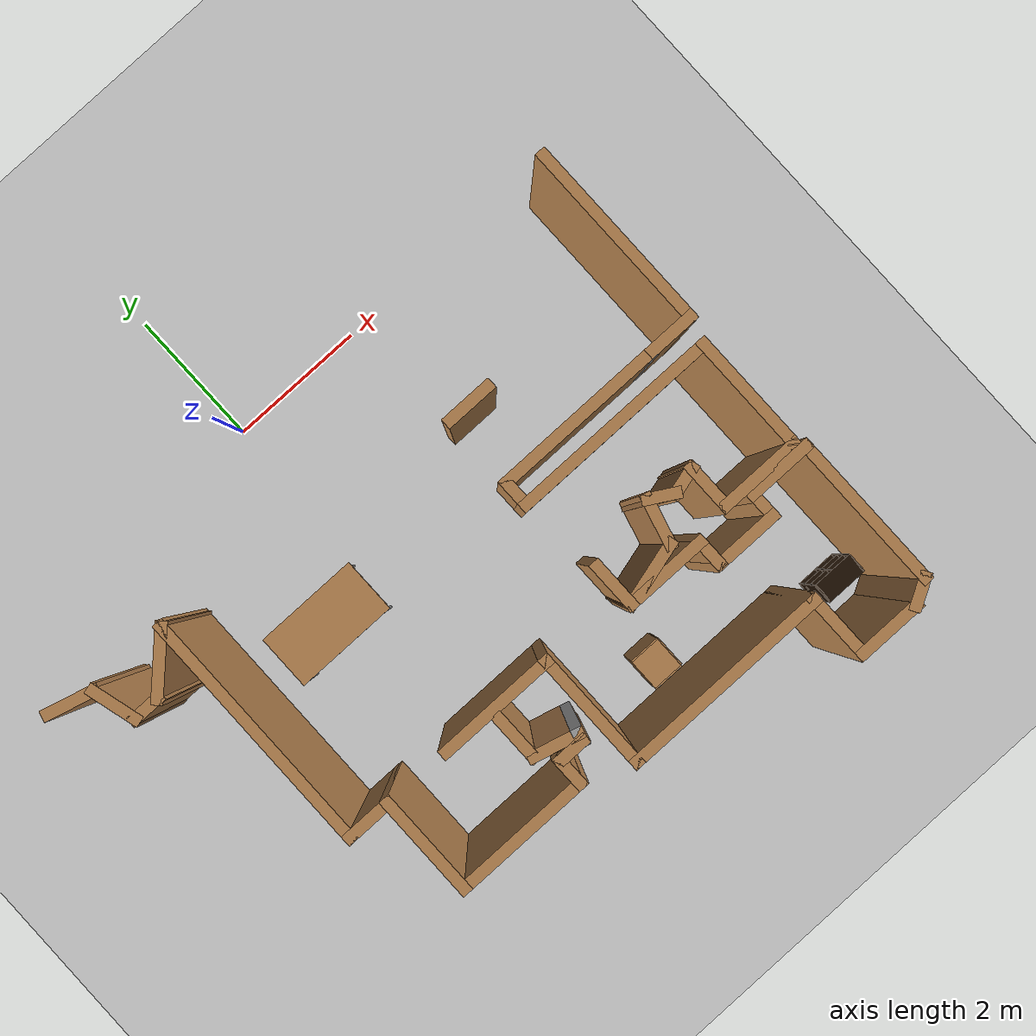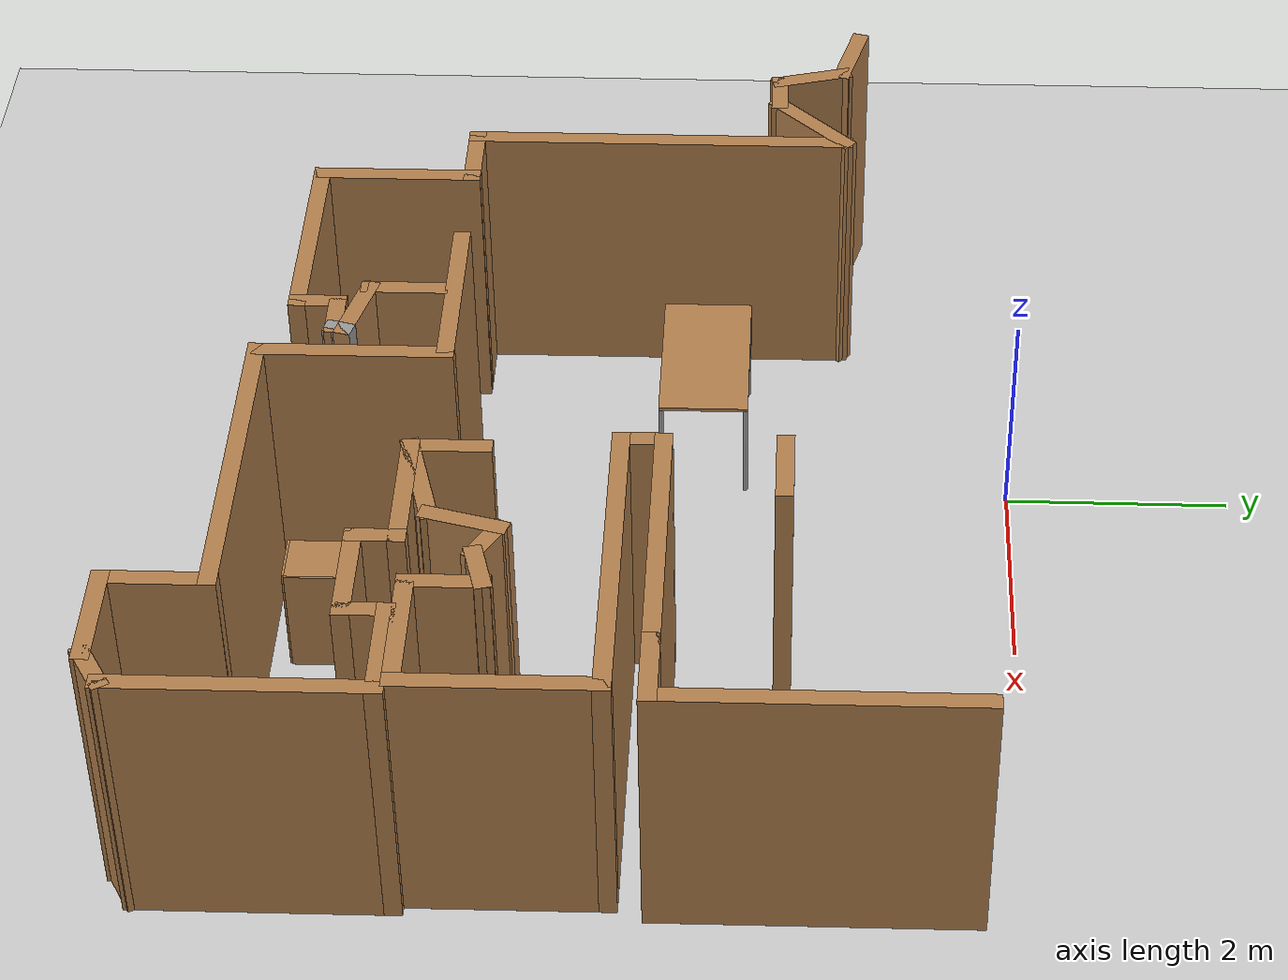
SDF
<sdf version="1.7">
 <world name="default">
  <model name="ground_plane">
   <static>1</static>
   <link name="link">
    <collision name="collision">
     <geometry><plane><normal>0 0 1</normal><size>100 100</size></plane></geometry>
     <surface>
      <contact><collide_bitmask>65535</collide_bitmask></contact>
      <friction><ode><mu>100</mu><mu2>50</mu2></ode></friction>
     </surface>
    </collision>
    <visual name="visual">
     <cast_shadows>0</cast_shadows>
     <geometry><plane><normal>0 0 1</normal><size>100 100</size></plane></geometry>
     <material>
      <script><uri>file://media/materials/scripts/gazebo.material</uri><name>Gazebo/Grey</name></script>
     </material>
    </visual>
   </link>
  </model>
  <model name="map_9">
   <pose>0.660855 -0.93148 0 0 -0 0</pose>
   <link name="Wall_27">
    <collision name="Wall_27_Collision">
     <geometry><box><size>0.75 0.15 2.5</size></box></geometry>
     <pose>0 0 1.25 0 -0 0</pose>
    </collision>
    <visual name="Wall_27_Visual">
     <pose>0 0 1.25 0 -0 0</pose>
     <geometry><box><size>0.75 0.15 2.5</size></box></geometry>
     <material>
      <script><uri>file://media/materials/scripts/gazebo.material</uri><name>Gazebo/Wood</name></script>
      <ambient>1 1 1 1</ambient>
     </material>
     <meta><layer>0</layer></meta>
    </visual>
    <pose>-4.11913 -0.545389 0 0 -0 -0.261799</pose>
   </link>
   <link name="Wall_28">
    <collision name="Wall_28_Collision">
     <geometry><box><size>0.75 0.15 2.5</size></box></geometry>
     <pose>0 0 1.25 0 -0 0</pose>
    </collision>
    <visual name="Wall_28_Visual">
     <pose>0 0 1.25 0 -0 0</pose>
     <geometry><box><size>0.75 0.15 2.5</size></box></geometry>
     <material>
      <script><uri>file://media/materials/scripts/gazebo.material</uri><name>Gazebo/Wood</name></script>
      <ambient>1 1 1 1</ambient>
     </material>
     <meta><layer>0</layer></meta>
    </visual>
    <pose>-3.75171 -0.912812 0 0 -0 -1.309</pose>
   </link>
   <link name="Wall_29">
    <collision name="Wall_29_Collision">
     <geometry><box><size>0.5 0.15 2.5</size></box></geometry>
     <pose>0 0 1.25 0 -0 0</pose>
    </collision>
    <visual name="Wall_29_Visual">
     <pose>0 0 1.25 0 -0 0</pose>
     <geometry><box><size>0.5 0.15 2.5</size></box></geometry>
     <material>
      <script><uri>file://media/materials/scripts/gazebo.material</uri><name>Gazebo/Wood</name></script>
      <ambient>1 1 1 1</ambient>
     </material>
     <meta><layer>0</layer></meta>
    </visual>
    <pose>-3.49906 -1.20259 0 0 -0 0</pose>
   </link>
   <link name="Wall_30">
    <collision name="Wall_30_Collision">
     <geometry><box><size>1 0.15 2.5</size></box></geometry>
     <pose>0 0 1.25 0 -0 0</pose>
    </collision>
    <visual name="Wall_30_Visual">
     <pose>0 0 1.25 0 -0 0</pose>
     <geometry><box><size>1 0.15 2.5</size></box></geometry>
     <material>
      <script><uri>file://media/materials/scripts/gazebo.material</uri><name>Gazebo/Wood</name></script>
      <ambient>1 1 1 1</ambient>
     </material>
     <meta><layer>0</layer></meta>
    </visual>
    <pose>-3.02354 -0.902069 0 0 -0 0.785398</pose>
   </link>
   <link name="Wall_31">
    <collision name="Wall_31_Collision">
     <geometry><box><size>3.5 0.15 2.5</size></box></geometry>
     <pose>0 0 1.25 0 -0 0</pose>
    </collision>
    <visual name="Wall_31_Visual">
     <pose>0 0 1.25 0 -0 0</pose>
     <geometry><box><size>3.5 0.15 2.5</size></box></geometry>
     <material>
      <script><uri>file://media/materials/scripts/gazebo.material</uri><name>Gazebo/Wood</name></script>
      <ambient>1 1 1 1</ambient>
     </material>
     <meta><layer>0</layer></meta>
    </visual>
    <pose>-2.72302 -2.27655 0 0 -0 -1.5708</pose>
   </link>
   <link name="Wall_32">
    <collision name="Wall_32_Collision">
     <geometry><box><size>0.75 0.15 2.5</size></box></geometry>
     <pose>0 0 1.25 0 -0 0</pose>
    </collision>
    <visual name="Wall_32_Visual">
     <pose>0 0 1.25 0 -0 0</pose>
     <geometry><box><size>0.75 0.15 2.5</size></box></geometry>
     <material>
      <script><uri>file://media/materials/scripts/gazebo.material</uri><name>Gazebo/Wood</name></script>
      <ambient>1 1 1 1</ambient>
     </material>
     <meta><layer>0</layer></meta>
    </visual>
    <pose>-2.42302 -3.95155 0 0 -0 0</pose>
   </link>
   <link name="Wall_33">
    <collision name="Wall_33_Collision">
     <geometry><box><size>1.5 0.15 2.5</size></box></geometry>
     <pose>0 0 1.25 0 -0 0</pose>
    </collision>
    <visual name="Wall_33_Visual">
     <pose>0 0 1.25 0 -0 0</pose>
     <geometry><box><size>1.5 0.15 2.5</size></box></geometry>
     <material>
      <script><uri>file://media/materials/scripts/gazebo.material</uri><name>Gazebo/Wood</name></script>
      <ambient>1 1 1 1</ambient>
     </material>
     <meta><layer>0</layer></meta>
    </visual>
    <pose>-2.12302 -4.62655 0 0 -0 -1.5708</pose>
   </link>
   <link name="Wall_34">
    <collision name="Wall_34_Collision">
     <geometry><box><size>2 0.15 2.5</size></box></geometry>
     <pose>0 0 1.25 0 -0 0</pose>
    </collision>
    <visual name="Wall_34_Visual">
     <pose>0 0 1.25 0 -0 0</pose>
     <geometry><box><size>2 0.15 2.5</size></box></geometry>
     <material>
      <script><uri>file://media/materials/scripts/gazebo.material</uri><name>Gazebo/Wood</name></script>
      <ambient>1 1 1 1</ambient>
     </material>
     <meta><layer>0</layer></meta>
    </visual>
    <pose>-1.19802 -5.30155 0 0 -0 0</pose>
   </link>
   <link name="Wall_35">
    <collision name="Wall_35_Collision">
     <geometry><box><size>0.5 0.15 2.5</size></box></geometry>
     <pose>0 0 1.25 0 -0 0</pose>
    </collision>
    <visual name="Wall_35_Visual">
     <pose>0 0 1.25 0 -0 0</pose>
     <geometry><box><size>0.5 0.15 2.5</size></box></geometry>
     <material>
      <script><uri>file://media/materials/scripts/gazebo.material</uri><name>Gazebo/Wood</name></script>
      <ambient>1 1 1 1</ambient>
     </material>
     <meta><layer>0</layer></meta>
    </visual>
    <pose>-0.273024 -5.12655 0 0 -0 1.5708</pose>
   </link>
   <link name="Wall_36">
    <collision name="Wall_36_Collision">
     <geometry><box><size>0.5 0.15 2.5</size></box></geometry>
     <pose>0 0 1.25 0 -0 0</pose>
    </collision>
    <visual name="Wall_36_Visual">
     <pose>0 0 1.25 0 -0 0</pose>
     <geometry><box><size>0.5 0.15 2.5</size></box></geometry>
     <material>
      <script><uri>file://media/materials/scripts/gazebo.material</uri><name>Gazebo/Wood</name></script>
      <ambient>1 1 1 1</ambient>
     </material>
     <meta><layer>0</layer></meta>
    </visual>
    <pose>-0.098024 -4.95155 0 0 -0 0</pose>
   </link>
   <link name="Wall_37">
    <collision name="Wall_37_Collision">
     <geometry><box><size>0.25 0.15 2.5</size></box></geometry>
     <pose>0 0 1.25 0 -0 0</pose>
    </collision>
    <visual name="Wall_37_Visual">
     <pose>0 0 1.25 0 -0 0</pose>
     <geometry><box><size>0.25 0.15 2.5</size></box></geometry>
     <material>
      <script><uri>file://media/materials/scripts/gazebo.material</uri><name>Gazebo/Grey</name></script>
      <ambient>1 1 1 1</ambient>
     </material>
     <meta><layer>0</layer></meta>
    </visual>
    <pose>0.089917 -4.90325 0 0 -0 1.309</pose>
   </link>
   <link name="Wall_40">
    <collision name="Wall_40_Collision">
     <geometry><box><size>0.25 0.15 2.5</size></box></geometry>
     <pose>0 0 1.25 0 -0 0</pose>
    </collision>
    <visual name="Wall_40_Visual">
     <pose>0 0 1.25 0 -0 0</pose>
     <geometry><box><size>0.25 0.15 2.5</size></box></geometry>
     <material>
      <script><uri>file://media/materials/scripts/gazebo.material</uri><name>Gazebo/Wood</name></script>
      <ambient>1 1 1 1</ambient>
     </material>
     <meta><layer>0</layer></meta>
    </visual>
    <pose>0.089917 -4.90325 0 0 -0 1.309</pose>
   </link>
   <link name="Wall_41">
    <collision name="Wall_41_Collision">
     <geometry><box><size>0.75 0.15 2.5</size></box></geometry>
     <pose>0 0 1.25 0 -0 0</pose>
    </collision>
    <visual name="Wall_41_Visual">
     <pose>0 0 1.25 0 -0 0</pose>
     <geometry><box><size>0.75 0.15 2.5</size></box></geometry>
     <material>
      <script><uri>file://media/materials/scripts/gazebo.material</uri><name>Gazebo/Wood</name></script>
      <ambient>1 1 1 1</ambient>
     </material>
     <meta><layer>0</layer></meta>
    </visual>
    <pose>-0.18692 -4.77731 0 0 -0 2.87979</pose>
   </link>
   <link name="Wall_44">
    <collision name="Wall_44_Collision">
     <geometry><box><size>0.75 0.15 2.5</size></box></geometry>
     <pose>0 0 1.25 0 -0 0</pose>
    </collision>
    <visual name="Wall_44_Visual">
     <pose>0 0 1.25 0 -0 0</pose>
     <geometry><box><size>0.75 0.15 2.5</size></box></geometry>
     <material>
      <script><uri>file://media/materials/scripts/gazebo.material</uri><name>Gazebo/Wood</name></script>
      <ambient>1 1 1 1</ambient>
     </material>
     <meta><layer>0</layer></meta>
    </visual>
    <pose>-0.476698 -4.39966 0 0 -0 1.5708</pose>
   </link>
   <link name="Wall_46">
    <collision name="Wall_46_Collision">
     <geometry><box><size>1.75 0.15 2.5</size></box></geometry>
     <pose>0 0 1.25 0 -0 0</pose>
    </collision>
    <visual name="Wall_46_Visual">
     <pose>0 0 1.25 0 -0 0</pose>
     <geometry><box><size>1.75 0.15 2.5</size></box></geometry>
     <material>
      <script><uri>file://media/materials/scripts/gazebo.material</uri><name>Gazebo/Wood</name></script>
      <ambient>1 1 1 1</ambient>
     </material>
     <meta><layer>0</layer></meta>
    </visual>
    <pose>-0.404793 -3.96775 0 0 -0 0</pose>
   </link>
   <link name="Wall_47">
    <collision name="Wall_47_Collision">
     <geometry><box><size>1.75 0.15 2.5</size></box></geometry>
     <pose>0 0 1.25 0 -0 0</pose>
    </collision>
    <visual name="Wall_47_Visual">
     <pose>0 0 1.25 0 -0 0</pose>
     <geometry><box><size>1.75 0.15 2.5</size></box></geometry>
     <material>
      <script><uri>file://media/materials/scripts/gazebo.material</uri><name>Gazebo/Wood</name></script>
      <ambient>1 1 1 1</ambient>
     </material>
     <meta><layer>0</layer></meta>
    </visual>
    <pose>0.395207 -4.76775 0 0 -0 -1.5708</pose>
   </link>
   <link name="Wall_48">
    <collision name="Wall_48_Collision">
     <geometry><box><size>3 0.15 2.5</size></box></geometry>
     <pose>0 0 1.25 0 -0 0</pose>
    </collision>
    <visual name="Wall_48_Visual">
     <pose>0 0 1.25 0 -0 0</pose>
     <geometry><box><size>3 0.15 2.5</size></box></geometry>
     <material>
      <script><uri>file://media/materials/scripts/gazebo.material</uri><name>Gazebo/Wood</name></script>
      <ambient>1 1 1 1</ambient>
     </material>
     <meta><layer>0</layer></meta>
    </visual>
    <pose>1.82021 -5.56775 0 0 -0 0</pose>
   </link>
   <link name="Wall_49">
    <collision name="Wall_49_Collision">
     <geometry><box><size>1 0.15 2.5</size></box></geometry>
     <pose>0 0 1.25 0 -0 0</pose>
    </collision>
    <visual name="Wall_49_Visual">
     <pose>0 0 1.25 0 -0 0</pose>
     <geometry><box><size>1 0.15 2.5</size></box></geometry>
     <material>
      <script><uri>file://media/materials/scripts/gazebo.material</uri><name>Gazebo/Wood</name></script>
      <ambient>1 1 1 1</ambient>
     </material>
     <meta><layer>0</layer></meta>
    </visual>
    <pose>3.24521 -5.99275 0 0 -0 -1.5708</pose>
   </link>
   <link name="Wall_50">
    <collision name="Wall_50_Collision">
     <geometry><box><size>1 0.15 2.5</size></box></geometry>
     <pose>0 0 1.25 0 -0 0</pose>
    </collision>
    <visual name="Wall_50_Visual">
     <pose>0 0 1.25 0 -0 0</pose>
     <geometry><box><size>1 0.15 2.5</size></box></geometry>
     <material>
      <script><uri>file://media/materials/scripts/gazebo.material</uri><name>Gazebo/Wood</name></script>
      <ambient>1 1 1 1</ambient>
     </material>
     <meta><layer>0</layer></meta>
    </visual>
    <pose>3.67021 -6.41775 0 0 -0 0</pose>
   </link>
   <link name="Wall_51">
    <collision name="Wall_51_Collision">
     <geometry><box><size>0.5 0.15 2.5</size></box></geometry>
     <pose>0 0 1.25 0 -0 0</pose>
    </collision>
    <visual name="Wall_51_Visual">
     <pose>0 0 1.25 0 -0 0</pose>
     <geometry><box><size>0.5 0.15 2.5</size></box></geometry>
     <material>
      <script><uri>file://media/materials/scripts/gazebo.material</uri><name>Gazebo/Wood</name></script>
      <ambient>1 1 1 1</ambient>
     </material>
     <meta><layer>0</layer></meta>
    </visual>
    <pose>4.24676 -6.33025 0 0 -0 0.523599</pose>
   </link>
   <link name="Wall_52">
    <collision name="Wall_52_Collision">
     <geometry><box><size>2.25 0.15 2.5</size></box></geometry>
     <pose>0 0 1.25 0 -0 0</pose>
    </collision>
    <visual name="Wall_52_Visual">
     <pose>0 0 1.25 0 -0 0</pose>
     <geometry><box><size>2.25 0.15 2.5</size></box></geometry>
     <material>
      <script><uri>file://media/materials/scripts/gazebo.material</uri><name>Gazebo/Wood</name></script>
      <ambient>1 1 1 1</ambient>
     </material>
     <meta><layer>0</layer></meta>
    </visual>
    <pose>4.39832 -5.19275 0 0 -0 1.5708</pose>
   </link>
   <link name="Wall_53">
    <collision name="Wall_53_Collision">
     <geometry><box><size>1 0.15 2.5</size></box></geometry>
     <pose>0 0 1.25 0 -0 0</pose>
    </collision>
    <visual name="Wall_53_Visual">
     <pose>0 0 1.25 0 -0 0</pose>
     <geometry><box><size>1 0.15 2.5</size></box></geometry>
     <material>
      <script><uri>file://media/materials/scripts/gazebo.material</uri><name>Gazebo/Wood</name></script>
      <ambient>1 1 1 1</ambient>
     </material>
     <meta><layer>0</layer></meta>
    </visual>
    <pose>3.97332 -4.14275 0 0 -0 3.14159</pose>
   </link>
   <link name="Wall_54">
    <collision name="Wall_54_Collision">
     <geometry><box><size>0.5 0.15 2.5</size></box></geometry>
     <pose>0 0 1.25 0 -0 0</pose>
    </collision>
    <visual name="Wall_54_Visual">
     <pose>0 0 1.25 0 -0 0</pose>
     <geometry><box><size>0.5 0.15 2.5</size></box></geometry>
     <material>
      <script><uri>file://media/materials/scripts/gazebo.material</uri><name>Gazebo/Wood</name></script>
      <ambient>1 1 1 1</ambient>
     </material>
     <meta><layer>0</layer></meta>
    </visual>
    <pose>3.54832 -4.31775 0 0 -0 -1.5708</pose>
   </link>
   <link name="Wall_55">
    <collision name="Wall_55_Collision">
     <geometry><box><size>1 0.15 2.5</size></box></geometry>
     <pose>0 0 1.25 0 -0 0</pose>
    </collision>
    <visual name="Wall_55_Visual">
     <pose>0 0 1.25 0 -0 0</pose>
     <geometry><box><size>1 0.15 2.5</size></box></geometry>
     <material>
      <script><uri>file://media/materials/scripts/gazebo.material</uri><name>Gazebo/Wood</name></script>
      <ambient>1 1 1 1</ambient>
     </material>
     <meta><layer>0</layer></meta>
    </visual>
    <pose>3.12332 -4.49275 0 0 -0 3.14159</pose>
   </link>
   <link name="Wall_56">
    <collision name="Wall_56_Collision">
     <geometry><box><size>0.5 0.15 2.5</size></box></geometry>
     <pose>0 0 1.25 0 -0 0</pose>
    </collision>
    <visual name="Wall_56_Visual">
     <pose>0 0 1.25 0 -0 0</pose>
     <geometry><box><size>0.5 0.15 2.5</size></box></geometry>
     <material>
      <script><uri>file://media/materials/scripts/gazebo.material</uri><name>Gazebo/Wood</name></script>
      <ambient>1 1 1 1</ambient>
     </material>
     <meta><layer>0</layer></meta>
    </visual>
    <pose>2.69832 -4.31775 0 0 -0 1.5708</pose>
   </link>
   <link name="Wall_57">
    <collision name="Wall_57_Collision">
     <geometry><box><size>1.25 0.15 2.5</size></box></geometry>
     <pose>0 0 1.25 0 -0 0</pose>
    </collision>
    <visual name="Wall_57_Visual">
     <pose>0 0 1.25 0 -0 0</pose>
     <geometry><box><size>1.25 0.15 2.5</size></box></geometry>
     <material>
      <script><uri>file://media/materials/scripts/gazebo.material</uri><name>Gazebo/Wood</name></script>
      <ambient>1 1 1 1</ambient>
     </material>
     <meta><layer>0</layer></meta>
    </visual>
    <pose>2.14832 -4.14275 0 0 -0 3.14159</pose>
   </link>
   <link name="Wall_58">
    <collision name="Wall_58_Collision">
     <geometry><box><size>0.75 0.15 2.5</size></box></geometry>
     <pose>0 0 1.25 0 -0 0</pose>
    </collision>
    <visual name="Wall_58_Visual">
     <pose>0 0 1.25 0 -0 0</pose>
     <geometry><box><size>0.75 0.15 2.5</size></box></geometry>
     <material>
      <script><uri>file://media/materials/scripts/gazebo.material</uri><name>Gazebo/Wood</name></script>
      <ambient>1 1 1 1</ambient>
     </material>
     <meta><layer>0</layer></meta>
    </visual>
    <pose>1.59832 -3.84275 0 0 -0 1.5708</pose>
   </link>
   <link name="Wall_60">
    <collision name="Wall_60_Collision">
     <geometry><box><size>1 0.15 2.5</size></box></geometry>
     <pose>0 0 1.25 0 -0 0</pose>
    </collision>
    <visual name="Wall_60_Visual">
     <pose>0 0 1.25 0 -0 0</pose>
     <geometry><box><size>1 0.15 2.5</size></box></geometry>
     <material>
      <script><uri>file://media/materials/scripts/gazebo.material</uri><name>Gazebo/Wood</name></script>
      <ambient>1 1 1 1</ambient>
     </material>
     <meta><layer>0</layer></meta>
    </visual>
    <pose>2.00883 -4.03275 0 0 -0 0.261799</pose>
   </link>
   <link name="Wall_61">
    <collision name="Wall_61_Collision">
     <geometry><box><size>0.75 0.15 2.5</size></box></geometry>
     <pose>0 0 1.25 0 -0 0</pose>
    </collision>
    <visual name="Wall_61_Visual">
     <pose>0 0 1.25 0 -0 0</pose>
     <geometry><box><size>0.75 0.15 2.5</size></box></geometry>
     <material>
      <script><uri>file://media/materials/scripts/gazebo.material</uri><name>Gazebo/Wood</name></script>
      <ambient>1 1 1 1</ambient>
     </material>
     <meta><layer>0</layer></meta>
    </visual>
    <pose>2.497 -3.63298 0 0 -0 1.309</pose>
   </link>
   <link name="Wall_62">
    <collision name="Wall_62_Collision">
     <geometry><box><size>0.5 0.15 2.5</size></box></geometry>
     <pose>0 0 1.25 0 -0 0</pose>
    </collision>
    <visual name="Wall_62_Visual">
     <pose>0 0 1.25 0 -0 0</pose>
     <geometry><box><size>0.5 0.15 2.5</size></box></geometry>
     <material>
      <script><uri>file://media/materials/scripts/gazebo.material</uri><name>Gazebo/Wood</name></script>
      <ambient>1 1 1 1</ambient>
     </material>
     <meta><layer>0</layer></meta>
    </visual>
    <pose>2.7262 -3.4307 0 0 -0 -0.523599</pose>
   </link>
   <link name="Wall_63">
    <collision name="Wall_63_Collision">
     <geometry><box><size>0.5 0.15 2.5</size></box></geometry>
     <pose>0 0 1.25 0 -0 0</pose>
    </collision>
    <visual name="Wall_63_Visual">
     <pose>0 0 1.25 0 -0 0</pose>
     <geometry><box><size>0.5 0.15 2.5</size></box></geometry>
     <material>
      <script><uri>file://media/materials/scripts/gazebo.material</uri><name>Gazebo/Wood</name></script>
      <ambient>1 1 1 1</ambient>
     </material>
     <meta><layer>0</layer></meta>
    </visual>
    <pose>3.04679 -3.4729 0 0 -0 0.261799</pose>
   </link>
   <link name="Wall_66">
    <collision name="Wall_66_Collision">
     <geometry><box><size>0.75 0.15 2.5</size></box></geometry>
     <pose>0 0 1.25 0 -0 0</pose>
    </collision>
    <visual name="Wall_66_Visual">
     <pose>0 0 1.25 0 -0 0</pose>
     <geometry><box><size>0.75 0.15 2.5</size></box></geometry>
     <material>
      <script><uri>file://media/materials/scripts/gazebo.material</uri><name>Gazebo/Wood</name></script>
      <ambient>1 1 1 1</ambient>
     </material>
     <meta><layer>0</layer></meta>
    </visual>
    <pose>3.21583 -3.72761 0 0 -0 -1.5708</pose>
   </link>
   <link name="Wall_67">
    <collision name="Wall_67_Collision">
     <geometry><box><size>1.25 0.15 2.5</size></box></geometry>
     <pose>0 0 1.25 0 -0 0</pose>
    </collision>
    <visual name="Wall_67_Visual">
     <pose>0 0 1.25 0 -0 0</pose>
     <geometry><box><size>1.25 0.15 2.5</size></box></geometry>
     <material>
      <script><uri>file://media/materials/scripts/gazebo.material</uri><name>Gazebo/Wood</name></script>
      <ambient>1 1 1 1</ambient>
     </material>
     <meta><layer>0</layer></meta>
    </visual>
    <pose>3.76583 -4.02761 0 0 -0 0</pose>
   </link>
   <link name="Wall_70">
    <collision name="Wall_70_Collision">
     <geometry><box><size>1.75 0.15 2.5</size></box></geometry>
     <pose>0 0 1.25 0 -0 0</pose>
    </collision>
    <visual name="Wall_70_Visual">
     <pose>0 0 1.25 0 -0 0</pose>
     <geometry><box><size>1.75 0.15 2.5</size></box></geometry>
     <material>
      <script><uri>file://media/materials/scripts/gazebo.material</uri><name>Gazebo/Wood</name></script>
      <ambient>1 1 1 1</ambient>
     </material>
     <meta><layer>0</layer></meta>
    </visual>
    <pose>4.31583 -3.22761 0 0 -0 1.5708</pose>
   </link>
   <link name="Wall_71">
    <collision name="Wall_71_Collision">
     <geometry><box><size>3 0.15 2.5</size></box></geometry>
     <pose>0 0 1.25 0 -0 0</pose>
    </collision>
    <visual name="Wall_71_Visual">
     <pose>0 0 1.25 0 -0 0</pose>
     <geometry><box><size>3 0.15 2.5</size></box></geometry>
     <material>
      <script><uri>file://media/materials/scripts/gazebo.material</uri><name>Gazebo/Wood</name></script>
      <ambient>1 1 1 1</ambient>
     </material>
     <meta><layer>0</layer></meta>
    </visual>
    <pose>2.89083 -2.42761 0 0 -0 3.14159</pose>
   </link>
   <link name="Wall_72">
    <collision name="Wall_72_Collision">
     <geometry><box><size>0.5 0.15 2.5</size></box></geometry>
     <pose>0 0 1.25 0 -0 0</pose>
    </collision>
    <visual name="Wall_72_Visual">
     <pose>0 0 1.25 0 -0 0</pose>
     <geometry><box><size>0.5 0.15 2.5</size></box></geometry>
     <material>
      <script><uri>file://media/materials/scripts/gazebo.material</uri><name>Gazebo/Wood</name></script>
      <ambient>1 1 1 1</ambient>
     </material>
     <meta><layer>0</layer></meta>
    </visual>
    <pose>1.46583 -2.25261 0 0 -0 1.5708</pose>
   </link>
   <link name="Wall_73">
    <collision name="Wall_73_Collision">
     <geometry><box><size>2.5 0.15 2.5</size></box></geometry>
     <pose>0 0 1.25 0 -0 0</pose>
    </collision>
    <visual name="Wall_73_Visual">
     <pose>0 0 1.25 0 -0 0</pose>
     <geometry><box><size>2.5 0.15 2.5</size></box></geometry>
     <material>
      <script><uri>file://media/materials/scripts/gazebo.material</uri><name>Gazebo/Wood</name></script>
      <ambient>1 1 1 1</ambient>
     </material>
     <meta><layer>0</layer></meta>
    </visual>
    <pose>2.64083 -2.07761 0 0 -0 0</pose>
   </link>
   <link name="Wall_74">
    <collision name="Wall_74_Collision">
     <geometry><box><size>0.15 0.15 2.5</size></box></geometry>
     <pose>0 0 1.25 0 -0 0</pose>
    </collision>
    <visual name="Wall_74_Visual">
     <pose>0 0 1.25 0 -0 0</pose>
     <geometry><box><size>0.15 0.15 2.5</size></box></geometry>
     <material>
      <script><uri>file://media/materials/scripts/gazebo.material</uri><name>Gazebo/Grey</name></script>
      <ambient>1 1 1 1</ambient>
     </material>
     <meta><layer>0</layer></meta>
    </visual>
    <pose>3.81583 -2.07761 0 0 -0 0</pose>
   </link>
   <link name="Wall_75">
    <collision name="Wall_75_Collision">
     <geometry><box><size>0.75 0.15 2.5</size></box></geometry>
     <pose>0 0 1.25 0 -0 0</pose>
    </collision>
    <visual name="Wall_75_Visual">
     <pose>0 0 1.25 0 -0 0</pose>
     <geometry><box><size>0.75 0.15 2.5</size></box></geometry>
     <material>
      <script><uri>file://media/materials/scripts/gazebo.material</uri><name>Gazebo/Wood</name></script>
      <ambient>1 1 1 1</ambient>
     </material>
     <meta><layer>0</layer></meta>
    </visual>
    <pose>4.11583 -2.07761 0 0 -0 0</pose>
   </link>
   <link name="Wall_76">
    <collision name="Wall_76_Collision">
     <geometry><box><size>2.75 0.15 2.5</size></box></geometry>
     <pose>0 0 1.25 0 -0 0</pose>
    </collision>
    <visual name="Wall_76_Visual">
     <pose>0 0 1.25 0 -0 0</pose>
     <geometry><box><size>2.75 0.15 2.5</size></box></geometry>
     <material>
      <script><uri>file://media/materials/scripts/gazebo.material</uri><name>Gazebo/Wood</name></script>
      <ambient>1 1 1 1</ambient>
     </material>
     <meta><layer>0</layer></meta>
    </visual>
    <pose>4.41583 -0.777612 0 0 -0 1.5708</pose>
   </link>
   <link name="Wall_79">
    <collision name="Wall_79_Collision">
     <geometry><box><size>0.75 0.15 2.5</size></box></geometry>
     <pose>0 0 1.25 0 -0 0</pose>
    </collision>
    <visual name="Wall_79_Visual">
     <pose>0 0 1.25 0 -0 0</pose>
     <geometry><box><size>0.75 0.15 2.5</size></box></geometry>
     <material>
      <script><uri>file://media/materials/scripts/gazebo.material</uri><name>Gazebo/Wood</name></script>
      <ambient>1 1 1 1</ambient>
     </material>
     <meta><layer>0</layer></meta>
    </visual>
    <pose>1.76583 -1.07761 0 0 -0 3.14159</pose>
   </link>
   <static>1</static>
  </model>
  <model name="cabinet">
   <static>1</static>
   <link name="cabinet_bottom_plate">
    <inertial>
     <pose>0 0 -1 0 -0 0</pose>
     <inertia><ixx>2.05</ixx><ixy>0</ixy><ixz>0</ixz><iyy>2.05</iyy><iyz>0</iyz><izz>2.05</izz></inertia>
     <mass>25</mass>
    </inertial>
    <collision name="cabinet_bottom_plate_geom">
     <pose>0 0 0.01 0 -0 0</pose>
     <geometry><box><size>0.45 0.45 0.02</size></box></geometry>
    </collision>
    <visual name="cabinet_bottom_plate_geom_visual">
     <pose>0 0 0.01 0 -0 0</pose>
     <geometry><box><size>0.45 0.45 0.02</size></box></geometry>
     <material>
      <script><uri>file://media/materials/scripts/gazebo.material</uri><name>Gazebo/Wood</name></script>
     </material>
    </visual>
    <collision name="cabinet_bottom_plate_geom_cabinet_back_plate">
     <pose>0.235 0 0.51 0 -0 0</pose>
     <geometry><box><size>0.02 0.45 1.02</size></box></geometry>
    </collision>
    <visual name="cabinet_bottom_plate_geom_cabinet_back_plate_visual">
     <pose>0.235 0 0.51 0 -0 0</pose>
     <geometry><box><size>0.02 0.45 1.02</size></box></geometry>
     <material>
      <script><uri>file://media/materials/scripts/gazebo.material</uri><name>Gazebo/Wood</name></script>
     </material>
    </visual>
    <collision name="cabinet_bottom_plate_geom_cabinet_left_plate">
     <pose>0 0.235 0.51 0 -0 0</pose>
     <geometry><box><size>0.45 0.02 1.02</size></box></geometry>
    </collision>
    <visual name="cabinet_bottom_plate_geom_cabinet_left_plate_visual">
     <pose>0 0.235 0.51 0 -0 0</pose>
     <geometry><box><size>0.45 0.02 1.02</size></box></geometry>
     <material>
      <script><uri>file://media/materials/scripts/gazebo.material</uri><name>Gazebo/Wood</name></script>
     </material>
    </visual>
    <collision name="cabinet_bottom_plate_geom_cabinet_middle_plate">
     <pose>0 0 0.51 0 -0 0</pose>
     <geometry><box><size>0.45 0.45 0.02</size></box></geometry>
    </collision>
    <visual name="cabinet_bottom_plate_geom_cabinet_middle_plate_visual">
     <pose>0 0 0.51 0 -0 0</pose>
     <geometry><box><size>0.45 0.45 0.02</size></box></geometry>
     <material>
      <script><uri>file://media/materials/scripts/gazebo.material</uri><name>Gazebo/Wood</name></script>
     </material>
    </visual>
    <collision name="cabinet_bottom_plate_geom_cabinet_right_plate">
     <pose>0 -0.235 0.51 0 -0 0</pose>
     <geometry><box><size>0.45 0.02 1.02</size></box></geometry>
    </collision>
    <visual name="cabinet_bottom_plate_geom_cabinet_right_plate_visual">
     <pose>0 -0.235 0.51 0 -0 0</pose>
     <geometry><box><size>0.45 0.02 1.02</size></box></geometry>
     <material>
      <script><uri>file://media/materials/scripts/gazebo.material</uri><name>Gazebo/Wood</name></script>
     </material>
    </visual>
    <collision name="cabinet_bottom_plate_geom_cabinet_top_plate">
     <pose>0 0 1.01 0 -0 0</pose>
     <geometry><box><size>0.45 0.45 0.02</size></box></geometry>
    </collision>
    <visual name="cabinet_bottom_plate_geom_cabinet_top_plate_visual">
     <pose>0 0 1.01 0 -0 0</pose>
     <geometry><box><size>0.45 0.45 0.02</size></box></geometry>
     <material>
      <script><uri>file://media/materials/scripts/gazebo.material</uri><name>Gazebo/Wood</name></script>
     </material>
    </visual>
   </link>
   <pose>2.05153 -6.01194 0 0 -0 0</pose>
  </model>
  <model name="6_Cube_StorageE">
   <link name="Wall_0">
    <pose>0 0 0.01 0 -0 0</pose>
    <inertial>
     <mass>1.6201</mass>
     <inertia><ixx>0.0119</ixx><iyy>0.0631</iyy><izz>0.0513</izz><ixy>0</ixy><ixz>0</ixz><iyz>0</iyz></inertia>
    </inertial>
    <collision name="Wall_0_Collision"><geometry><box><size>0.616 0.296 0.02</size></box></geometry></collision>
    <visual name="Wall_0_Visual">
     <geometry><box><size>0.616 0.296 0.02</size></box></geometry>
     <material>
      <script><uri>file://media/materials/scripts/gazebo.material</uri><name>Gazebo/Grey</name></script>
      <ambient>0.105882 0.0509804 0 1</ambient>
     </material>
    </visual>
   </link>
   <joint name="0_2" type="fixed">
    <pose>-0.308 0 0 0 -0 0</pose>
    <parent>Wall_2</parent>
    <child>Wall_0</child>
    <axis><xyz>1 0 0</xyz><limit><lower>-1e+16</lower><upper>1e+16</upper></limit></axis>
   </joint>
   <joint name="0_12" type="fixed">
    <parent>Wall_12</parent>
    <child>Wall_0</child>
    <axis><xyz>0 0 1</xyz><limit><lower>-1e+16</lower><upper>1e+16</upper></limit></axis>
   </joint>
   <joint name="0_4" type="fixed">
    <pose>0.308 0 0 0 -0 0</pose>
    <parent>Wall_4</parent>
    <child>Wall_0</child>
    <axis><xyz>1 0 0</xyz><limit><lower>-1e+16</lower><upper>1e+16</upper></limit></axis>
   </joint>
   <link name="Wall_10">
    <pose>0 0 0.61 0 -0 0</pose>
    <inertial>
     <mass>1.6201</mass>
     <inertia><ixx>0.0119</ixx><iyy>0.0631</iyy><izz>0.0513</izz><ixy>0</ixy><ixz>0</ixz><iyz>0</iyz></inertia>
    </inertial>
    <collision name="Wall_10_Collision"><geometry><box><size>0.616 0.296 0.02</size></box></geometry></collision>
    <visual name="Wall_10_Visual">
     <geometry><box><size>0.616 0.296 0.02</size></box></geometry>
     <material>
      <script><uri>file://media/materials/scripts/gazebo.material</uri><name>Gazebo/Grey</name></script>
      <ambient>0.105882 0.0509804 0 1</ambient>
     </material>
    </visual>
   </link>
   <joint name="10_2" type="fixed">
    <pose>-0.308 0 0 0 -0 0</pose>
    <parent>Wall_2</parent>
    <child>Wall_10</child>
    <axis><xyz>1 0 0</xyz><limit><lower>-1e+16</lower><upper>1e+16</upper></limit></axis>
   </joint>
   <joint name="10_12" type="fixed">
    <parent>Wall_12</parent>
    <child>Wall_10</child>
    <axis><xyz>0 0 1</xyz><limit><lower>-1e+16</lower><upper>1e+16</upper></limit></axis>
   </joint>
   <joint name="10_4" type="fixed">
    <pose>0.308 0 0 0 -0 0</pose>
    <parent>Wall_4</parent>
    <child>Wall_10</child>
    <axis><xyz>1 0 0</xyz><limit><lower>-1e+16</lower><upper>1e+16</upper></limit></axis>
   </joint>
   <link name="Wall_12">
    <pose>0 0 0.4575 0 -0 0</pose>
    <inertial>
     <mass>2.4065</mass>
     <inertia><ixx>0.0177</ixx><iyy>0.1855</iyy><izz>0.168</izz><ixy>0</ixy><ixz>0</ixz><iyz>0</iyz></inertia>
    </inertial>
    <collision name="Wall_12_Collision"><geometry><box><size>0.02 0.296 0.915</size></box></geometry></collision>
    <visual name="Wall_12_Visual">
     <geometry><box><size>0.02 0.296 0.915</size></box></geometry>
     <material>
      <script><uri>file://media/materials/scripts/gazebo.material</uri><name>Gazebo/Grey</name></script>
      <ambient>0.105882 0.0509804 0 1</ambient>
     </material>
    </visual>
   </link>
   <link name="Wall_2">
    <pose>-0.298 0 0.4575 0 -0 0</pose>
    <inertial>
     <mass>2.4065</mass>
     <inertia><ixx>0.0177</ixx><iyy>0.1855</iyy><izz>0.168</izz><ixy>0</ixy><ixz>0</ixz><iyz>0</iyz></inertia>
    </inertial>
    <collision name="Wall_2_Collision"><geometry><box><size>0.02 0.296 0.915</size></box></geometry></collision>
    <visual name="Wall_2_Visual">
     <geometry><box><size>0.02 0.296 0.915</size></box></geometry>
     <material>
      <script><uri>file://media/materials/scripts/gazebo.material</uri><name>Gazebo/Grey</name></script>
      <ambient>0.105882 0.0509804 0 1</ambient>
     </material>
    </visual>
   </link>
   <link name="Wall_4">
    <pose>0.298 0 0.4575 0 -0 0</pose>
    <inertial>
     <mass>2.4065</mass>
     <inertia><ixx>0.0177</ixx><iyy>0.1855</iyy><izz>0.168</izz><ixy>0</ixy><ixz>0</ixz><iyz>0</iyz></inertia>
    </inertial>
    <collision name="Wall_4_Collision"><geometry><box><size>0.02 0.296 0.915</size></box></geometry></collision>
    <visual name="Wall_4_Visual">
     <geometry><box><size>0.02 0.296 0.915</size></box></geometry>
     <material>
      <script><uri>file://media/materials/scripts/gazebo.material</uri><name>Gazebo/Grey</name></script>
      <ambient>0.105882 0.0509804 0 1</ambient>
     </material>
    </visual>
   </link>
   <link name="Wall_6">
    <pose>0 0 0.905 0 -0 0</pose>
    <inertial>
     <mass>1.6201</mass>
     <inertia><ixx>0.0119</ixx><iyy>0.0631</iyy><izz>0.0513</izz><ixy>0</ixy><ixz>0</ixz><iyz>0</iyz></inertia>
    </inertial>
    <collision name="Wall_6_Collision"><geometry><box><size>0.616 0.296 0.02</size></box></geometry></collision>
    <visual name="Wall_6_Visual">
     <geometry><box><size>0.616 0.296 0.02</size></box></geometry>
     <material>
      <script><uri>file://media/materials/scripts/gazebo.material</uri><name>Gazebo/Grey</name></script>
      <ambient>0.105882 0.0509804 0 1</ambient>
     </material>
    </visual>
   </link>
   <joint name="6_2" type="fixed">
    <pose>-0.308 0 0 0 -0 0</pose>
    <parent>Wall_2</parent>
    <child>Wall_6</child>
    <axis><xyz>2 0 0</xyz><limit><lower>-1e+16</lower><upper>1e+16</upper></limit></axis>
   </joint>
   <joint name="6_12" type="fixed">
    <parent>Wall_12</parent>
    <child>Wall_6</child>
    <axis><xyz>0 0 1</xyz><limit><lower>-1e+16</lower><upper>1e+16</upper></limit></axis>
   </joint>
   <joint name="6_4" type="fixed">
    <pose>0.308 0 0 0 -0 0</pose>
    <parent>Wall_4</parent>
    <child>Wall_6</child>
    <axis><xyz>1 0 0</xyz><limit><lower>-1e+16</lower><upper>1e+16</upper></limit></axis>
   </joint>
   <link name="Wall_8">
    <pose>0 0 0.305 0 -0 0</pose>
    <inertial>
     <mass>1.6201</mass>
     <inertia><ixx>0.0119</ixx><iyy>0.0631</iyy><izz>0.0513</izz><ixy>0</ixy><ixz>0</ixz><iyz>0</iyz></inertia>
    </inertial>
    <collision name="Wall_8_Collision"><geometry><box><size>0.616 0.296 0.02</size></box></geometry></collision>
    <visual name="Wall_8_Visual">
     <geometry><box><size>0.616 0.296 0.02</size></box></geometry>
     <material>
      <script><uri>file://media/materials/scripts/gazebo.material</uri><name>Gazebo/Grey</name></script>
      <ambient>0.105882 0.0509804 0 1</ambient>
     </material>
    </visual>
   </link>
   <joint name="8_2" type="fixed">
    <pose>-0.308 0 0 0 -0 0</pose>
    <parent>Wall_2</parent>
    <child>Wall_8</child>
    <axis><xyz>1 0 0</xyz><limit><lower>-1e+16</lower><upper>1e+16</upper></limit></axis>
   </joint>
   <joint name="8_12" type="fixed">
    <parent>Wall_12</parent>
    <child>Wall_8</child>
    <axis><xyz>0 0 1</xyz><limit><lower>-1e+16</lower><upper>1e+16</upper></limit></axis>
   </joint>
   <joint name="8_4" type="fixed">
    <pose>0.308 0 0 0 -0 0</pose>
    <parent>Wall_4</parent>
    <child>Wall_8</child>
    <axis><xyz>1 0 0</xyz><limit><lower>-1e+16</lower><upper>1e+16</upper></limit></axis>
   </joint>
   <static>1</static>
   <pose>4.57891 -6.80829 0 0 -0 0</pose>
  </model>
  <model name="table">
   <static>1</static>
   <link name="link">
    <collision name="surface">
     <pose>0 0 1 0 -0 0</pose>
     <geometry><box><size>1.5 0.8 0.03</size></box></geometry>
     <surface><friction><ode><mu>0.6</mu><mu2>0.6</mu2></ode></friction></surface>
    </collision>
    <visual name="visual1">
     <pose>0 0 1 0 -0 0</pose>
     <geometry><box><size>1.5 0.8 0.03</size></box></geometry>
     <material>
      <script><uri>file://media/materials/scripts/gazebo.material</uri><name>Gazebo/Wood</name></script>
     </material>
    </visual>
    <collision name="front_left_leg">
     <pose>0.68 0.38 0.5 0 -0 0</pose>
     <geometry><cylinder><radius>0.02</radius><length>1</length></cylinder></geometry>
    </collision>
    <visual name="front_left_leg">
     <pose>0.68 0.38 0.5 0 -0 0</pose>
     <geometry><cylinder><radius>0.02</radius><length>1</length></cylinder></geometry>
     <material>
      <script><uri>file://media/materials/scripts/gazebo.material</uri><name>Gazebo/Grey</name></script>
     </material>
    </visual>
    <collision name="front_right_leg">
     <pose>0.68 -0.38 0.5 0 -0 0</pose>
     <geometry><cylinder><radius>0.02</radius><length>1</length></cylinder></geometry>
    </collision>
    <visual name="front_right_leg">
     <pose>0.68 -0.38 0.5 0 -0 0</pose>
     <geometry><cylinder><radius>0.02</radius><length>1</length></cylinder></geometry>
     <material>
      <script><uri>file://media/materials/scripts/gazebo.material</uri><name>Gazebo/Grey</name></script>
     </material>
    </visual>
    <collision name="back_right_leg">
     <pose>-0.68 -0.38 0.5 0 -0 0</pose>
     <geometry><cylinder><radius>0.02</radius><length>1</length></cylinder></geometry>
    </collision>
    <visual name="back_right_leg">
     <pose>-0.68 -0.38 0.5 0 -0 0</pose>
     <geometry><cylinder><radius>0.02</radius><length>1</length></cylinder></geometry>
     <material>
      <script><uri>file://media/materials/scripts/gazebo.material</uri><name>Gazebo/Grey</name></script>
     </material>
    </visual>
    <collision name="back_left_leg">
     <pose>-0.68 0.38 0.5 0 -0 0</pose>
     <geometry><cylinder><radius>0.02</radius><length>1</length></cylinder></geometry>
    </collision>
    <visual name="back_left_leg">
     <pose>-0.68 0.38 0.5 0 -0 0</pose>
     <geometry><cylinder><radius>0.02</radius><length>1</length></cylinder></geometry>
     <material>
      <script><uri>file://media/materials/scripts/gazebo.material</uri><name>Gazebo/Grey</name></script>
     </material>
    </visual>
   </link>
   <pose>-0.777267 -2.76258 0 0 -0 0</pose>
  </model>
 </world>
</sdf>
